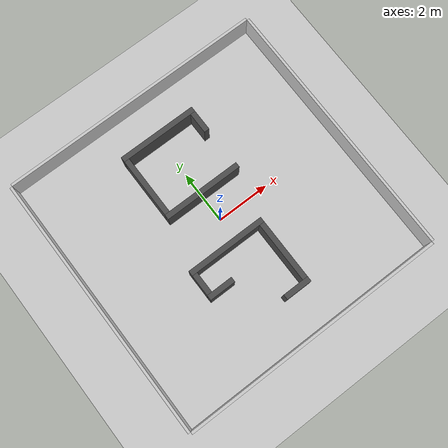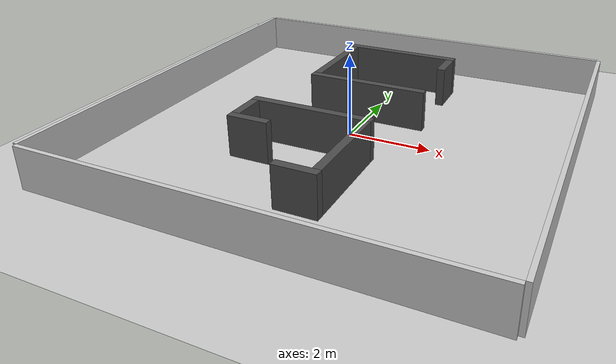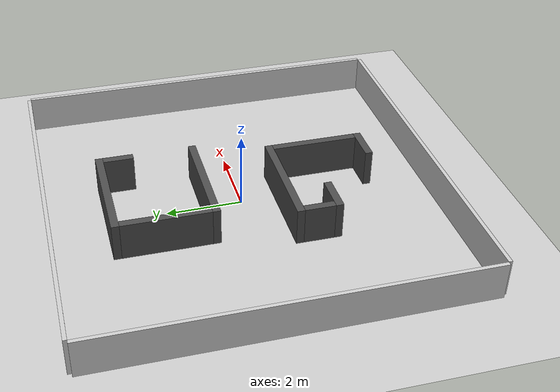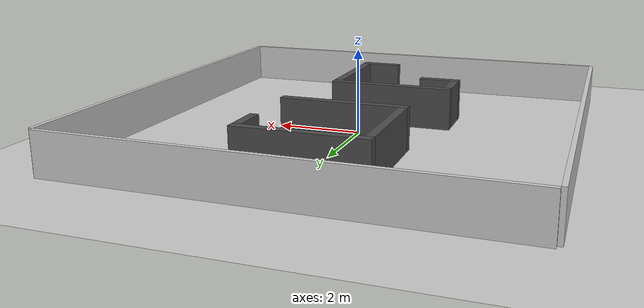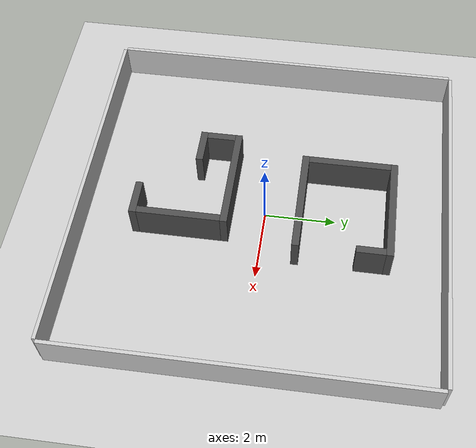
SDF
<?xml version='1.0' encoding='utf-8'?>
<sdf version="1.6">
  <world name="simple_room">

    <physics type="ode">
      <max_step_size>0.001</max_step_size>
      <real_time_factor>1</real_time_factor>
      <real_time_update_rate>1000</real_time_update_rate>
    </physics>

    <include>
      <uri>model://sun</uri>
    </include>

    <include>
      <uri>model://ground_plane</uri>
    </include>

    <model name="wall_left">
      <static>true</static>
      <pose>-5.05 0 0.5 0 0 0</pose>
      <link name="link">
        <collision name="collision">
          <geometry><box><size>0.1 10 1</size></box></geometry>
        </collision>
        <visual name="visual">
          <geometry><box><size>0.1 10 1</size></box></geometry>
          <material>
            <ambient>0.8 0.8 0.8 1</ambient>
            <diffuse>0.8 0.8 0.8 1</diffuse>
          </material>
        </visual>
      </link>
    </model>
    <model name="wall_right">
      <static>true</static>
      <pose>5.05 0 0.5 0 0 0</pose>
      <link name="link">
        <collision name="collision">
          <geometry><box><size>0.1 10 1</size></box></geometry>
        </collision>
        <visual name="visual">
          <geometry><box><size>0.1 10 1</size></box></geometry>
          <material>
            <ambient>0.8 0.8 0.8 1</ambient>
            <diffuse>0.8 0.8 0.8 1</diffuse>
          </material>
        </visual>
      </link>
    </model>
    <model name="wall_top">
      <static>true</static>
      <pose>0 5.05 0.5 0 0 0</pose>
      <link name="link">
        <collision name="collision">
          <geometry><box><size>10 0.1 1</size></box></geometry>
        </collision>
        <visual name="visual">
          <geometry><box><size>10 0.1 1</size></box></geometry>
          <material>
            <ambient>0.8 0.8 0.8 1</ambient>
            <diffuse>0.8 0.8 0.8 1</diffuse>
          </material>
        </visual>
      </link>
    </model>
    <model name="wall_bottom">
      <static>true</static>
      <pose>0 -5.05 0.5 0 0 0</pose>
      <link name="link">
        <collision name="collision">
          <geometry><box><size>10 0.1 1</size></box></geometry>
        </collision>
        <visual name="visual">
          <geometry><box><size>10 0.1 1</size></box></geometry>
          <material>
            <ambient>0.8 0.8 0.8 1</ambient>
            <diffuse>0.8 0.8 0.8 1</diffuse>
          </material>
        </visual>
      </link>
    </model>

    <model name="1_bottom_wall_lead">
      <static>true</static>
      <pose>0 1 0.5 0 0 0</pose>
      <link name="link">
        <collision name="collision">
          <geometry>
            <box>
              <size>3 0.2 1.0</size>
            </box>
          </geometry>
        </collision>
        <visual name="visual">
          <geometry>
            <box>
              <size>3 0.2 1.0</size>
            </box>
          </geometry>
          <material>
            <ambient>0.3 0.3 0.3 1</ambient>
            <diffuse>0.3 0.3 0.3 1</diffuse>
          </material>
        </visual>
      </link>
    </model>

    <model name="1_top_wall_lead">
      <static>true</static>
      <pose>0 3.5 0.5 0 0 0</pose>
      <link name="link">
        <collision name="collision">
          <geometry>
            <box>
              <size>3 0.2 1.0</size>
            </box>
          </geometry>
        </collision>
        <visual name="visual">
          <geometry>
            <box>
              <size>3 0.2 1.0</size>
            </box>
          </geometry>
          <material>
            <ambient>0.3 0.3 0.3 1</ambient>
            <diffuse>0.3 0.3 0.3 1</diffuse>
          </material>
        </visual>
      </link>
    </model>

    <model name="1_left_wall_lead">
      <static>true</static>
      <pose>-1.4 2.25 0.5 0 0 0</pose>
      <link name="link">
        <collision name="collision">
          <geometry>
            <box>
              <size>0.2 2.3 1.0</size>
            </box>
          </geometry>
        </collision>
        <visual name="visual">
          <geometry>
            <box>
              <size>0.2 2.3 1.0</size>
            </box>
          </geometry>
          <material>
            <ambient>0.3 0.3 0.3 1</ambient>
            <diffuse>0.3 0.3 0.3 1</diffuse>
          </material>
        </visual>
      </link>
    </model>

    <model name="1_right_wall_lead">
      <static>true</static>
      <pose>1.4 3.0 0.5 0 0 0</pose>
      <link name="link">
        <collision name="collision">
          <geometry>
            <box>
              <size>0.2 0.8 1.0</size>
            </box>
          </geometry>
        </collision>
        <visual name="visual">
          <geometry>
            <box>
              <size>0.2 0.8 1.0</size>
            </box>
          </geometry>
          <material>
            <ambient>0.3 0.3 0.3 1</ambient>
            <diffuse>0.3 0.3 0.3 1</diffuse>
          </material>
        </visual>
      </link>
    </model>

    <model name="2_top_wall_lead">
      <static>true</static>
      <pose>-0.5 -1.0 0.5 0 0 0</pose>
      <link name="link">
        <collision name="collision">
          <geometry>
            <box>
              <size>3.0 0.2 1.0</size>
            </box>
          </geometry>
        </collision>
        <visual name="visual">
          <geometry>
            <box>
              <size>3.0 0.2 1.0</size>
            </box>
          </geometry>
          <material>
            <ambient>0.3 0.3 0.3 1</ambient>
            <diffuse>0.3 0.3 0.3 1</diffuse>
          </material>
        </visual>
      </link>
    </model>

    <model name="2_bottom_wall_lead">
      <static>true</static>
      <pose>0.5 -3.5 0.5 0 0 0</pose>
      <link name="link">
        <collision name="collision">
          <geometry>
            <box>
              <size>1.0 0.2 1.0</size>
            </box>
          </geometry>
        </collision>
        <visual name="visual">
          <geometry>
            <box>
              <size>1.0 0.2 1.0</size>
            </box>
          </geometry>
          <material>
            <ambient>0.3 0.3 0.3 1</ambient>
            <diffuse>0.3 0.3 0.3 1</diffuse>
          </material>
        </visual>
      </link>
    </model>

    <model name="2_leftBottom_wall_lead">
      <static>true</static>
      <pose>-1.5 -2.0 0.5 0 0 0</pose>
      <link name="link">
        <collision name="collision">
          <geometry>
            <box>
              <size>1.0 0.2 1.0</size>
            </box>
          </geometry>
        </collision>
        <visual name="visual">
          <geometry>
            <box>
              <size>1.0 0.2 1.0</size>
            </box>
          </geometry>
          <material>
            <ambient>0.3 0.3 0.3 1</ambient>
            <diffuse>0.3 0.3 0.3 1</diffuse>
          </material>
        </visual>
      </link>
    </model>

    <model name="2_right_wall_lead">
      <static>true</static>
      <pose>0.9 -2.25 0.5 0 0 0</pose>
      <link name="link">
        <collision name="collision">
          <geometry>
            <box>
              <size>0.2 2.3 1.0</size>
            </box>
          </geometry>
        </collision>
        <visual name="visual">
          <geometry>
            <box>
              <size>0.2 2.3 1.0</size>
            </box>
          </geometry>
          <material>
            <ambient>0.3 0.3 0.3 1</ambient>
            <diffuse>0.3 0.3 0.3 1</diffuse>
          </material>
        </visual>
      </link>
    </model>

    <model name="2_left_wall_lead">
      <static>true</static>
      <pose>-1.9 -1.5 0.5 0 0 0</pose>
      <link name="link">
        <collision name="collision">
          <geometry>
            <box>
              <size>0.2 0.8 1.0</size>
            </box>
          </geometry>
        </collision>
        <visual name="visual">
          <geometry>
            <box>
              <size>0.2 0.8 1.0</size>
            </box>
          </geometry>
          <material>
            <ambient>0.3 0.3 0.3 1</ambient>
            <diffuse>0.3 0.3 0.3 1</diffuse>
          </material>
        </visual>
      </link>
    </model>

  </world>
</sdf>
